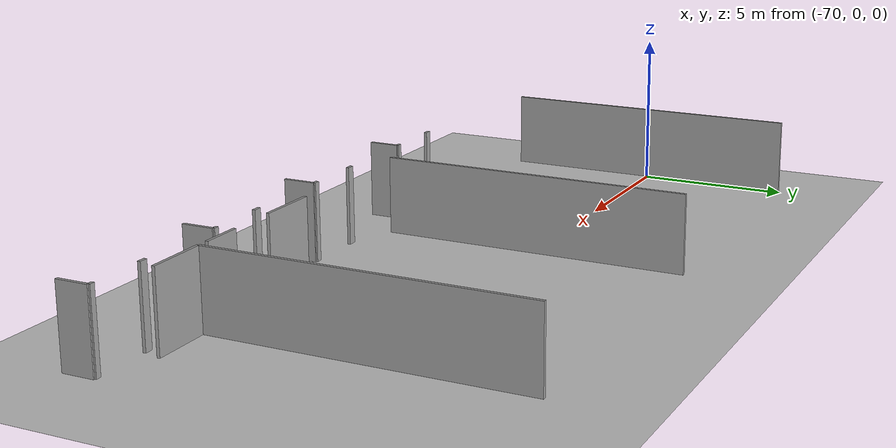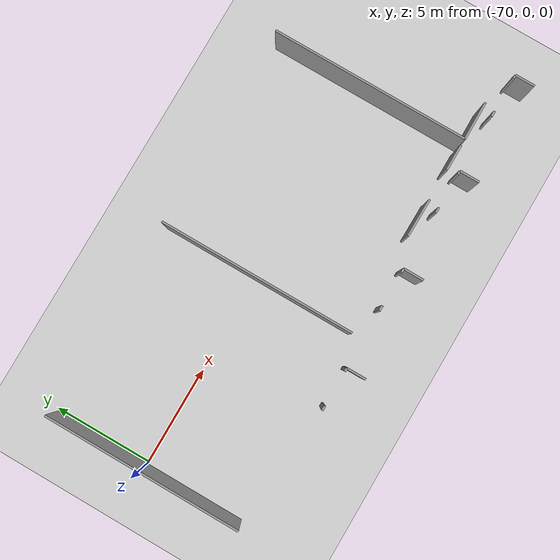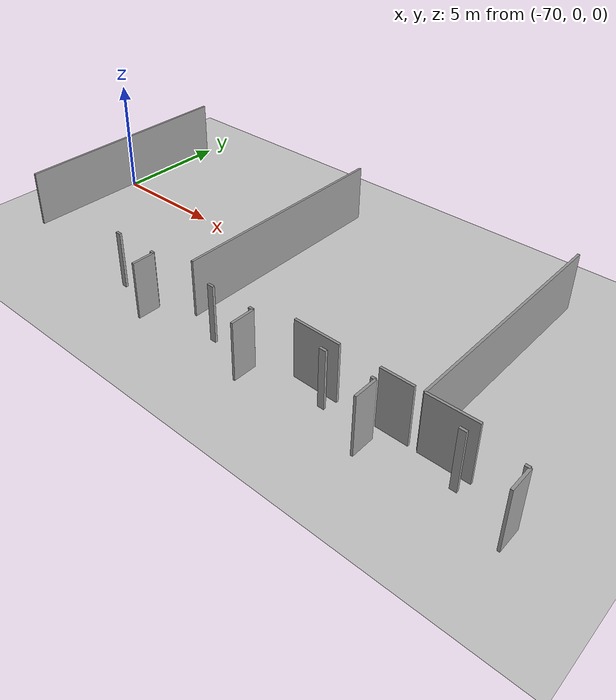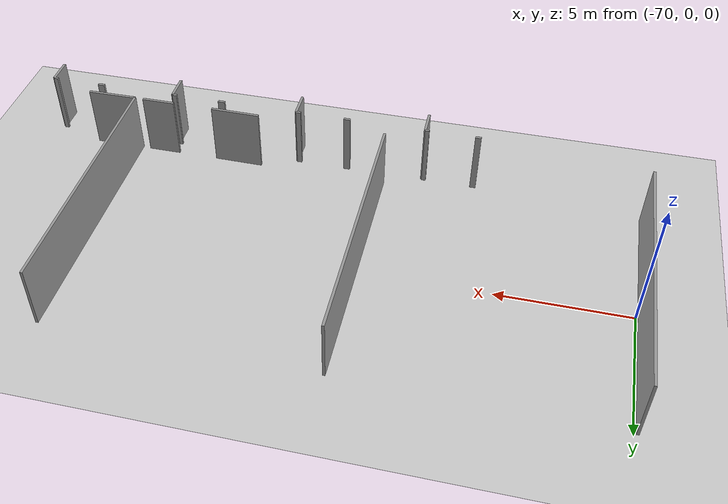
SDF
<sdf version="1.6">
 <world name="default">
  <model name="ground_plane">
   <static>1</static>
   <link name="link">
    <collision name="collision">
     <geometry><plane><normal>0 0 1</normal><size>100 100</size></plane></geometry>
     <surface><friction><ode><mu>100</mu><mu2>50</mu2></ode></friction></surface>
    </collision>
    <visual name="visual">
     <cast_shadows>0</cast_shadows>
     <geometry><plane><normal>0 0 1</normal><size>100 100</size></plane></geometry>
     <material>
      <script><uri>file://media/materials/scripts/gazebo.material</uri><name>Gazebo/Grey</name></script>
     </material>
    </visual>
   </link>
  </model>
  <model name="50055640">
   <static>1</static>
   <link name="Wall_0">
    <collision name="Wall_0_Collision">
     <geometry><box><size>10.0309660389 0.1 2.5</size></box></geometry>
     <pose>5.01548301944 0 1.25 0 0 0</pose>
    </collision>
    <visual name="Wall_0_Visual">
     <pose>5.01548301944 0 1.25 0 0 0</pose>
     <geometry><box><size>10.0309660389 0.1 2.5</size></box></geometry>
     <material>
      <script><uri>file://media/materials/scripts/gazebo.material</uri><name>Gazebo/Grey</name></script>
      <ambient>1 1 1 1</ambient>
     </material>
    </visual>
    <pose>0.271460480227 -26.0134270775 0 0 0 1.57079632679</pose>
   </link>
   <link name="Wall_17">
    <collision name="Wall_17_Collision">
     <geometry><box><size>0.232879841616 0.1 2.5</size></box></geometry>
     <pose>0.116439920808 0 1.25 0 0 0</pose>
    </collision>
    <visual name="Wall_17_Visual">
     <pose>0.116439920808 0 1.25 0 0 0</pose>
     <geometry><box><size>0.232879841616 0.1 2.5</size></box></geometry>
     <material>
      <script><uri>file://media/materials/scripts/gazebo.material</uri><name>Gazebo/Grey</name></script>
      <ambient>1 1 1 1</ambient>
     </material>
    </visual>
    <pose>6.72457992792 -26.554317478 0 0 0 0.0</pose>
   </link>
   <link name="Wall_18">
    <collision name="Wall_18_Collision">
     <geometry><box><size>0.164094624093 0.1 2.5</size></box></geometry>
     <pose>0.0820473120463 0 1.25 0 0 0</pose>
    </collision>
    <visual name="Wall_18_Visual">
     <pose>0.0820473120463 0 1.25 0 0 0</pose>
     <geometry><box><size>0.164094624093 0.1 2.5</size></box></geometry>
     <material>
      <script><uri>file://media/materials/scripts/gazebo.material</uri><name>Gazebo/Grey</name></script>
      <ambient>1 1 1 1</ambient>
     </material>
    </visual>
    <pose>8.73788009544 -26.554317478 0 0 0 0.0</pose>
   </link>
   <link name="Wall_19">
    <collision name="Wall_19_Collision">
     <geometry><box><size>0.981648814661 0.1 2.5</size></box></geometry>
     <pose>0.49082440733 0 1.25 0 0 0</pose>
    </collision>
    <visual name="Wall_19_Visual">
     <pose>0.49082440733 0 1.25 0 0 0</pose>
     <geometry><box><size>0.981648814661 0.1 2.5</size></box></geometry>
     <material>
      <script><uri>file://media/materials/scripts/gazebo.material</uri><name>Gazebo/Grey</name></script>
      <ambient>1 1 1 1</ambient>
     </material>
    </visual>
    <pose>8.90197471953 -26.554317478 0 0 0 -1.57079632679</pose>
   </link>
   <link name="Wall_22">
    <collision name="Wall_22_Collision">
     <geometry><box><size>0.268922280319 0.1 2.5</size></box></geometry>
     <pose>0.134461140159 0 1.25 0 0 0</pose>
    </collision>
    <visual name="Wall_22_Visual">
     <pose>0.134461140159 0 1.25 0 0 0</pose>
     <geometry><box><size>0.268922280319 0.1 2.5</size></box></geometry>
     <material>
      <script><uri>file://media/materials/scripts/gazebo.material</uri><name>Gazebo/Grey</name></script>
      <ambient>1 1 1 1</ambient>
     </material>
    </visual>
    <pose>11.8625310929 -26.5379460886 0 0 0 0.0</pose>
   </link>
   <link name="Wall_23">
    <collision name="Wall_23_Collision">
     <geometry><box><size>0.192014823087 0.1 2.5</size></box></geometry>
     <pose>0.0960074115437 0 1.25 0 0 0</pose>
    </collision>
    <visual name="Wall_23_Visual">
     <pose>0.0960074115437 0 1.25 0 0 0</pose>
     <geometry><box><size>0.192014823087 0.1 2.5</size></box></geometry>
     <material>
      <script><uri>file://media/materials/scripts/gazebo.material</uri><name>Gazebo/Grey</name></script>
      <ambient>1 1 1 1</ambient>
     </material>
    </visual>
    <pose>13.8758312605 -26.5379460886 0 0 0 0.0</pose>
   </link>
   <link name="Wall_24">
    <collision name="Wall_24_Collision">
     <geometry><box><size>1.02403675313 0.1 2.5</size></box></geometry>
     <pose>0.512018376567 0 1.25 0 0 0</pose>
    </collision>
    <visual name="Wall_24_Visual">
     <pose>0.512018376567 0 1.25 0 0 0</pose>
     <geometry><box><size>1.02403675313 0.1 2.5</size></box></geometry>
     <material>
      <script><uri>file://media/materials/scripts/gazebo.material</uri><name>Gazebo/Grey</name></script>
      <ambient>1 1 1 1</ambient>
     </material>
    </visual>
    <pose>14.0678460836 -26.5379460886 0 0 0 -1.57079632679</pose>
   </link>
   <link name="Wall_32">
    <collision name="Wall_32_Collision">
     <geometry><box><size>9.97322199096 0.1 2.5</size></box></geometry>
     <pose>4.98661099548 0 1.25 0 0 0</pose>
    </collision>
    <visual name="Wall_32_Visual">
     <pose>4.98661099548 0 1.25 0 0 0</pose>
     <geometry><box><size>9.97322199096 0.1 2.5</size></box></geometry>
     <material>
      <script><uri>file://media/materials/scripts/gazebo.material</uri><name>Gazebo/Grey</name></script>
      <ambient>1 1 1 1</ambient>
     </material>
    </visual>
    <pose>10.3866947561 -25.9782730088 0 0 0 1.57079632679</pose>
   </link>
   <link name="Wall_42">
    <collision name="Wall_42_Collision">
     <geometry><box><size>0.277679070004 0.1 2.5</size></box></geometry>
     <pose>0.138839535002 0 1.25 0 0 0</pose>
    </collision>
    <visual name="Wall_42_Visual">
     <pose>0.138839535002 0 1.25 0 0 0</pose>
     <geometry><box><size>0.277679070004 0.1 2.5</size></box></geometry>
     <material>
      <script><uri>file://media/materials/scripts/gazebo.material</uri><name>Gazebo/Grey</name></script>
      <ambient>1 1 1 1</ambient>
     </material>
    </visual>
    <pose>17.0098735976 -26.526397279 0 0 0 0.0</pose>
   </link>
   <link name="Wall_43">
    <collision name="Wall_43_Collision">
     <geometry><box><size>0.176531803645 0.1 2.5</size></box></geometry>
     <pose>0.0882659018224 0 1.25 0 0 0</pose>
    </collision>
    <visual name="Wall_43_Visual">
     <pose>0.0882659018224 0 1.25 0 0 0</pose>
     <geometry><box><size>0.176531803645 0.1 2.5</size></box></geometry>
     <material>
      <script><uri>file://media/materials/scripts/gazebo.material</uri><name>Gazebo/Grey</name></script>
      <ambient>1 1 1 1</ambient>
     </material>
    </visual>
    <pose>19.0486826742 -26.526397279 0 0 0 0.0</pose>
   </link>
   <link name="Wall_44">
    <collision name="Wall_44_Collision">
     <geometry><box><size>1.00766536372 0.1 2.5</size></box></geometry>
     <pose>0.503832681862 0 1.25 0 0 0</pose>
    </collision>
    <visual name="Wall_44_Visual">
     <pose>0.503832681862 0 1.25 0 0 0</pose>
     <geometry><box><size>1.00766536372 0.1 2.5</size></box></geometry>
     <material>
      <script><uri>file://media/materials/scripts/gazebo.material</uri><name>Gazebo/Grey</name></script>
      <ambient>1 1 1 1</ambient>
     </material>
    </visual>
    <pose>19.2252144779 -26.526397279 0 0 0 -1.57079632679</pose>
   </link>
   <link name="Wall_47">
    <collision name="Wall_47_Collision">
     <geometry><box><size>0.268287730342 0.1 2.5</size></box></geometry>
     <pose>0.134143865171 0 1.25 0 0 0</pose>
    </collision>
    <visual name="Wall_47_Visual">
     <pose>0.134143865171 0 1.25 0 0 0</pose>
     <geometry><box><size>0.268287730342 0.1 2.5</size></box></geometry>
     <material>
      <script><uri>file://media/materials/scripts/gazebo.material</uri><name>Gazebo/Grey</name></script>
      <ambient>1 1 1 1</ambient>
     </material>
    </visual>
    <pose>22.1607695822 -26.527285649 0 0 0 0.0</pose>
   </link>
   <link name="Wall_48">
    <collision name="Wall_48_Collision">
     <geometry><box><size>0.1722168638 0.1 2.5</size></box></geometry>
     <pose>0.0861084319001 0 1.25 0 0 0</pose>
    </collision>
    <visual name="Wall_48_Visual">
     <pose>0.0861084319001 0 1.25 0 0 0</pose>
     <geometry><box><size>0.1722168638 0.1 2.5</size></box></geometry>
     <material>
      <script><uri>file://media/materials/scripts/gazebo.material</uri><name>Gazebo/Grey</name></script>
      <ambient>1 1 1 1</ambient>
     </material>
    </visual>
    <pose>24.2066856186 -26.527285649 0 0 0 0.0</pose>
   </link>
   <link name="Wall_49">
    <collision name="Wall_49_Collision">
     <geometry><box><size>1.00677699376 0.1 2.5</size></box></geometry>
     <pose>0.503388496878 0 1.25 0 0 0</pose>
    </collision>
    <visual name="Wall_49_Visual">
     <pose>0.503388496878 0 1.25 0 0 0</pose>
     <geometry><box><size>1.00677699376 0.1 2.5</size></box></geometry>
     <material>
      <script><uri>file://media/materials/scripts/gazebo.material</uri><name>Gazebo/Grey</name></script>
      <ambient>1 1 1 1</ambient>
     </material>
    </visual>
    <pose>24.3789024824 -26.527285649 0 0 0 -1.57079632679</pose>
   </link>
   <link name="Wall_86">
    <collision name="Wall_86_Collision">
     <geometry><box><size>1.29651251333 0.1 2.5</size></box></geometry>
     <pose>0.648256256663 0 1.25 0 0 0</pose>
    </collision>
    <visual name="Wall_86_Visual">
     <pose>0.648256256663 0 1.25 0 0 0</pose>
     <geometry><box><size>1.29651251333 0.1 2.5</size></box></geometry>
     <material>
      <script><uri>file://media/materials/scripts/gazebo.material</uri><name>Gazebo/Grey</name></script>
      <ambient>1 1 1 1</ambient>
     </material>
    </visual>
    <pose>20.2808518199 -25.9837301386 0 0 0 3.14159265359</pose>
   </link>
   <link name="Wall_87">
    <collision name="Wall_87_Collision">
     <geometry><box><size>1.93890900527 0.1 2.5</size></box></geometry>
     <pose>0.969454502633 0 1.25 0 0 0</pose>
    </collision>
    <visual name="Wall_87_Visual">
     <pose>0.969454502633 0 1.25 0 0 0</pose>
     <geometry><box><size>1.93890900527 0.1 2.5</size></box></geometry>
     <material>
      <script><uri>file://media/materials/scripts/gazebo.material</uri><name>Gazebo/Grey</name></script>
      <ambient>1 1 1 1</ambient>
     </material>
    </visual>
    <pose>17.388446114 -25.9837301386 0 0 0 3.13118522679</pose>
   </link>
   <link name="Wall_88">
    <collision name="Wall_88_Collision">
     <geometry><box><size>10.0176404894 0.1 2.5</size></box></geometry>
     <pose>5.00882024468 0 1.25 0 0 0</pose>
    </collision>
    <visual name="Wall_88_Visual">
     <pose>5.00882024468 0 1.25 0 0 0</pose>
     <geometry><box><size>10.0176404894 0.1 2.5</size></box></geometry>
     <material>
      <script><uri>file://media/materials/scripts/gazebo.material</uri><name>Gazebo/Grey</name></script>
      <ambient>1 1 1 1</ambient>
     </material>
    </visual>
    <pose>20.6316310473 -25.9923600183 0 0 0 1.57079632679</pose>
   </link>
   <link name="Wall_93">
    <collision name="Wall_93_Collision">
     <geometry><box><size>1.9349684956 0.1 2.5</size></box></geometry>
     <pose>0.967484247801 0 1.25 0 0 0</pose>
    </collision>
    <visual name="Wall_93_Visual">
     <pose>0.967484247801 0 1.25 0 0 0</pose>
     <geometry><box><size>1.9349684956 0.1 2.5</size></box></geometry>
     <material>
      <script><uri>file://media/materials/scripts/gazebo.material</uri><name>Gazebo/Grey</name></script>
      <ambient>1 1 1 1</ambient>
     </material>
    </visual>
    <pose>22.5665008376 -25.972815879 0 0 0 -3.131491987</pose>
   </link>
   <pose>-70.4 20.8977283111 0 0 0 0</pose>
  </model>
 </world>
</sdf>
